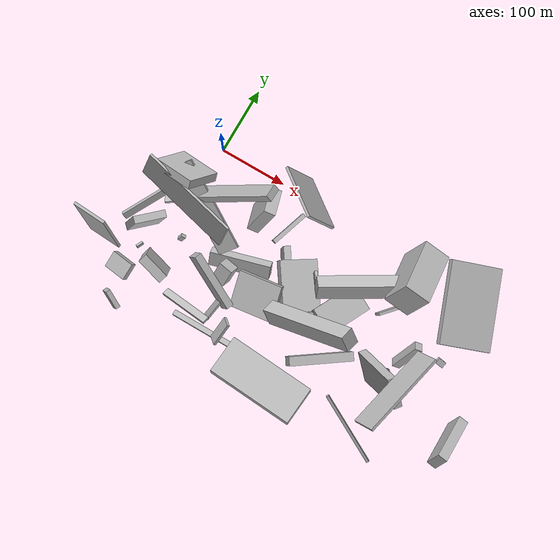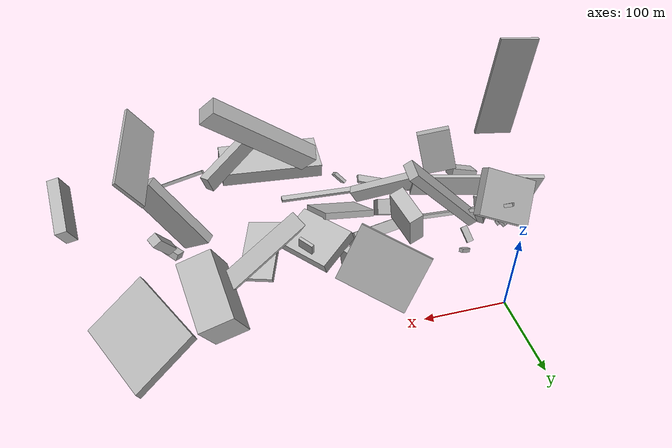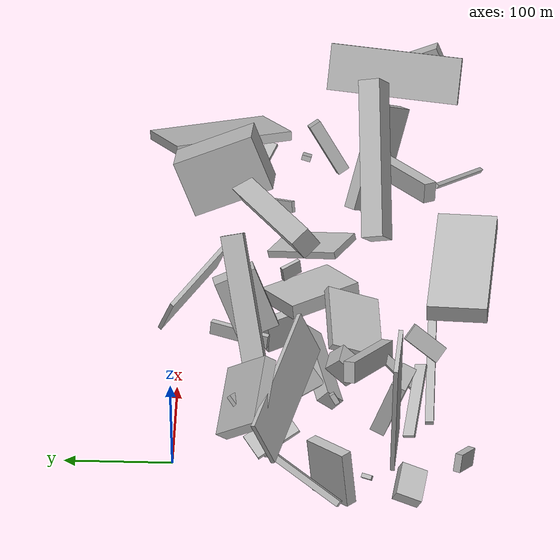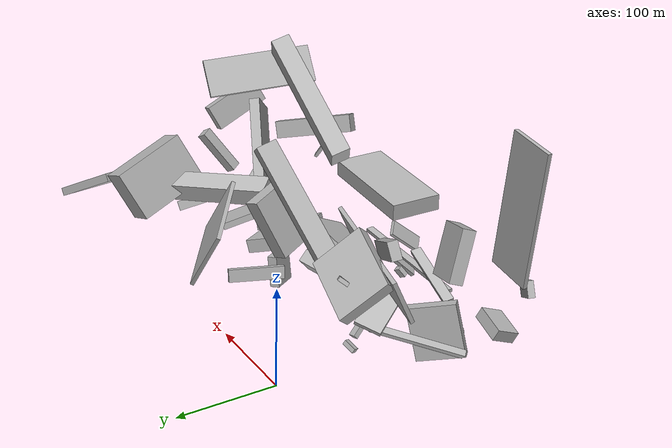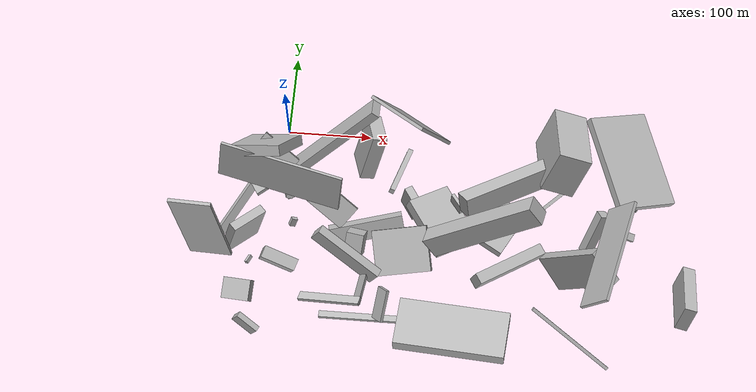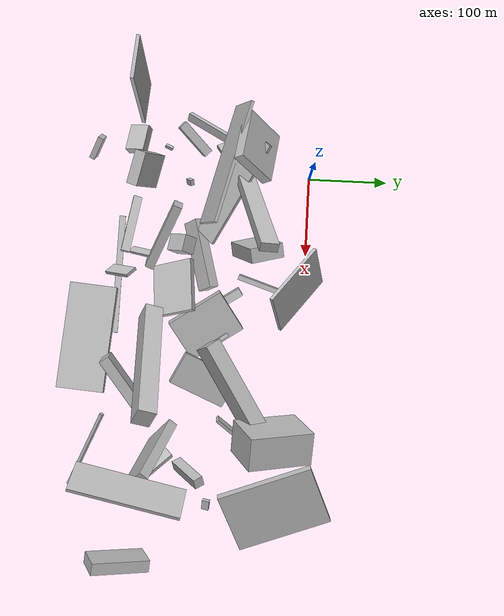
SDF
<sdf version="1.6">
 <world name="default">
  <model name="building_1">
   <static>0</static>
   <pose>437.6190915359875 -82.43035035319647 31.292061089138105 1.3118508661226833 1.0720738205177898 -3.0022340974256503</pose>
   <link name="link">
    <gravity>0</gravity>
    <pose>0 0 59.5 0 0 0</pose>
    <collision name="collision"><geometry><box><size>9 82 119</size></box></geometry></collision>
    <visual name="visual">
     <cast_shadows>0</cast_shadows>
     <geometry><box><size>9 82 119</size></box></geometry>
     <material>
      <script>
       <uri>model://HANNAS_wall/materials/scripts</uri>
       <uri>model://HANNAS_wall/materials/textures</uri>
       <name>vrc/HANNAS_wall</name>
      </script>
     </material>
    </visual>
   </link>
  </model>
  <model name="building_6">
   <static>0</static>
   <pose>5.35428498764694 -103.07190526928966 95.51340084668813 1.1489944750411571 -0.00948626060932305 -0.24898072430641696</pose>
   <link name="link">
    <gravity>0</gravity>
    <pose>0 0 2.0 0 0 0</pose>
    <collision name="collision"><geometry><box><size>150 46 4</size></box></geometry></collision>
    <visual name="visual">
     <cast_shadows>0</cast_shadows>
     <geometry><box><size>150 46 4</size></box></geometry>
     <material>
      <script>
       <uri>model://HANNAS_wall/materials/scripts</uri>
       <uri>model://HANNAS_wall/materials/textures</uri>
       <name>vrc/HANNAS_wall</name>
      </script>
     </material>
    </visual>
   </link>
  </model>
  <model name="building_8">
   <static>0</static>
   <pose>8.236391481148372 -192.9893109086677 52.11381987486844 0.26495647529017036 -0.29074147283644813 1.235395353005434</pose>
   <link name="link">
    <gravity>0</gravity>
    <pose>0 0 27.0 0 0 0</pose>
    <collision name="collision"><geometry><box><size>14 41 54</size></box></geometry></collision>
    <visual name="visual">
     <cast_shadows>0</cast_shadows>
     <geometry><box><size>14 41 54</size></box></geometry>
     <material>
      <script>
       <uri>model://HANNAS_wall/materials/scripts</uri>
       <uri>model://HANNAS_wall/materials/textures</uri>
       <name>vrc/HANNAS_wall</name>
      </script>
     </material>
    </visual>
   </link>
  </model>
  <model name="building_9">
   <static>0</static>
   <pose>100.23151855990163 -75.68300537512336 77.08729633280454 0.33936081322596373 0.3028605259533935 1.8573553293624574</pose>
   <link name="link">
    <gravity>0</gravity>
    <pose>0 0 31.5 0 0 0</pose>
    <collision name="collision"><geometry><box><size>40 17 63</size></box></geometry></collision>
    <visual name="visual">
     <cast_shadows>0</cast_shadows>
     <geometry><box><size>40 17 63</size></box></geometry>
     <material>
      <script>
       <uri>model://HANNAS_wall/materials/scripts</uri>
       <uri>model://HANNAS_wall/materials/textures</uri>
       <name>vrc/HANNAS_wall</name>
      </script>
     </material>
    </visual>
   </link>
  </model>
  <model name="building_10">
   <static>0</static>
   <pose>315.3999818722009 -34.23655719088282 73.86473228075866 2.349406722204507 -1.03022372763481 0.8335247308208918</pose>
   <link name="link">
    <gravity>0</gravity>
    <pose>0 0 20.5 0 0 0</pose>
    <collision name="collision"><geometry><box><size>57 81 41</size></box></geometry></collision>
    <visual name="visual">
     <cast_shadows>0</cast_shadows>
     <geometry><box><size>57 81 41</size></box></geometry>
     <material>
      <script>
       <uri>model://HANNAS_wall/materials/scripts</uri>
       <uri>model://HANNAS_wall/materials/textures</uri>
       <name>vrc/HANNAS_wall</name>
      </script>
     </material>
    </visual>
   </link>
  </model>
  <model name="building_11">
   <static>0</static>
   <pose>86.30546603905523 -127.60988022605544 39.37617794907643 1.0849870947818225 0.5447067295255789 -2.3615617535363285</pose>
   <link name="link">
    <gravity>0</gravity>
    <pose>0 0 70.5 0 0 0</pose>
    <collision name="collision"><geometry><box><size>32 4 141</size></box></geometry></collision>
    <visual name="visual">
     <cast_shadows>0</cast_shadows>
     <geometry><box><size>32 4 141</size></box></geometry>
     <material>
      <script>
       <uri>model://HANNAS_wall/materials/scripts</uri>
       <uri>model://HANNAS_wall/materials/textures</uri>
       <name>vrc/HANNAS_wall</name>
      </script>
     </material>
    </visual>
   </link>
  </model>
  <model name="building_17">
   <static>0</static>
   <pose>374.4214241260228 -172.16310725496191 17.586208114122 2.645069270264059 1.16014532316509 0.2777837157047316</pose>
   <link name="link">
    <gravity>0</gravity>
    <pose>0 0 6.5 0 0 0</pose>
    <collision name="collision"><geometry><box><size>9 42 13</size></box></geometry></collision>
    <visual name="visual">
     <cast_shadows>0</cast_shadows>
     <geometry><box><size>9 42 13</size></box></geometry>
     <material>
      <script>
       <uri>model://HANNAS_wall/materials/scripts</uri>
       <uri>model://HANNAS_wall/materials/textures</uri>
       <name>vrc/HANNAS_wall</name>
      </script>
     </material>
    </visual>
   </link>
  </model>
  <model name="building_18">
   <static>0</static>
   <pose>-4.309867410649486 -51.696882539594796 83.32571821749934 0.5253427518283332 0.6785387106305052 -1.3636956746165068</pose>
   <link name="link">
    <gravity>0</gravity>
    <pose>0 0 27.5 0 0 0</pose>
    <collision name="collision"><geometry><box><size>13 66 55</size></box></geometry></collision>
    <visual name="visual">
     <cast_shadows>0</cast_shadows>
     <geometry><box><size>13 66 55</size></box></geometry>
     <material>
      <script>
       <uri>model://HANNAS_wall/materials/scripts</uri>
       <uri>model://HANNAS_wall/materials/textures</uri>
       <name>vrc/HANNAS_wall</name>
      </script>
     </material>
    </visual>
   </link>
  </model>
  <model name="building_19">
   <static>0</static>
   <pose>281.65869959773255 -130.92780188530182 30.909655787425965 1.3764822428052967 -0.3504880116049783 -1.983069755106946</pose>
   <link name="link">
    <gravity>0</gravity>
    <pose>0 0 21.0 0 0 0</pose>
    <collision name="collision"><geometry><box><size>75 7 42</size></box></geometry></collision>
    <visual name="visual">
     <cast_shadows>0</cast_shadows>
     <geometry><box><size>75 7 42</size></box></geometry>
     <material>
      <script>
       <uri>model://HANNAS_wall/materials/scripts</uri>
       <uri>model://HANNAS_wall/materials/textures</uri>
       <name>vrc/HANNAS_wall</name>
      </script>
     </material>
    </visual>
   </link>
  </model>
  <model name="building_21">
   <static>0</static>
   <pose>106.10636290744945 -127.60953054299867 19.39357840926462 0.8232697023896908 -0.058896088131400993 0.2606551331963577</pose>
   <link name="link">
    <gravity>0</gravity>
    <pose>0 0 7.0 0 0 0</pose>
    <collision name="collision"><geometry><box><size>88 22 14</size></box></geometry></collision>
    <visual name="visual">
     <cast_shadows>0</cast_shadows>
     <geometry><box><size>88 22 14</size></box></geometry>
     <material>
      <script>
       <uri>model://HANNAS_wall/materials/scripts</uri>
       <uri>model://HANNAS_wall/materials/textures</uri>
       <name>vrc/HANNAS_wall</name>
      </script>
     </material>
    </visual>
   </link>
  </model>
  <model name="building_23">
   <static>0</static>
   <pose>217.21068066256566 -106.8936457999751 28.211134534866737 0.26020893949456286 -1.2441519493708681 0.3470414868789682</pose>
   <link name="link">
    <gravity>0</gravity>
    <pose>0 0 27.5 0 0 0</pose>
    <collision name="collision"><geometry><box><size>14 74 55</size></box></geometry></collision>
    <visual name="visual">
     <cast_shadows>0</cast_shadows>
     <geometry><box><size>14 74 55</size></box></geometry>
     <material>
      <script>
       <uri>model://HANNAS_wall/materials/scripts</uri>
       <uri>model://HANNAS_wall/materials/textures</uri>
       <name>vrc/HANNAS_wall</name>
      </script>
     </material>
    </visual>
   </link>
  </model>
  <model name="building_25">
   <static>0</static>
   <pose>144.6559463860777 -57.7673874871409 30.32514995439268 1.3488819990077496 0.023644021004574262 -1.8874123975515504</pose>
   <link name="link">
    <gravity>0</gravity>
    <pose>0 0 3.0 0 0 0</pose>
    <collision name="collision"><geometry><box><size>57 13 6</size></box></geometry></collision>
    <visual name="visual">
     <cast_shadows>0</cast_shadows>
     <geometry><box><size>57 13 6</size></box></geometry>
     <material>
      <script>
       <uri>model://HANNAS_wall/materials/scripts</uri>
       <uri>model://HANNAS_wall/materials/textures</uri>
       <name>vrc/HANNAS_wall</name>
      </script>
     </material>
    </visual>
   </link>
  </model>
  <model name="building_26">
   <static>0</static>
   <pose>18.955737822809514 -80.73620722591406 70.52551536359911 0.6980378700988477 0.24894655912686392 1.572158214057581</pose>
   <link name="link">
    <gravity>0</gravity>
    <pose>0 0 75.0 0 0 0</pose>
    <collision name="collision"><geometry><box><size>21 11 150</size></box></geometry></collision>
    <visual name="visual">
     <cast_shadows>0</cast_shadows>
     <geometry><box><size>21 11 150</size></box></geometry>
     <material>
      <script>
       <uri>model://HANNAS_wall/materials/scripts</uri>
       <uri>model://HANNAS_wall/materials/textures</uri>
       <name>vrc/HANNAS_wall</name>
      </script>
     </material>
    </visual>
   </link>
  </model>
  <model name="building_28">
   <static>0</static>
   <pose>363.68417162886124 -177.5659108691329 62.031368428985616 1.2778850788803788 -0.9103145721363576 -0.41208554279709697</pose>
   <link name="link">
    <gravity>0</gravity>
    <pose>0 0 6.0 0 0 0</pose>
    <collision name="collision"><geometry><box><size>105 46 12</size></box></geometry></collision>
    <visual name="visual">
     <cast_shadows>0</cast_shadows>
     <geometry><box><size>105 46 12</size></box></geometry>
     <material>
      <script>
       <uri>model://HANNAS_wall/materials/scripts</uri>
       <uri>model://HANNAS_wall/materials/textures</uri>
       <name>vrc/HANNAS_wall</name>
      </script>
     </material>
    </visual>
   </link>
  </model>
  <model name="building_30">
   <static>0</static>
   <pose>154.1438944602471 -260.76517615121014 50.82021861116795 -1.559107044717571 -0.037200076262798636 -1.6493112635955396</pose>
   <link name="link">
    <gravity>0</gravity>
    <pose>0 0 64.5 0 0 0</pose>
    <collision name="collision"><geometry><box><size>57 18 129</size></box></geometry></collision>
    <visual name="visual">
     <cast_shadows>0</cast_shadows>
     <geometry><box><size>57 18 129</size></box></geometry>
     <material>
      <script>
       <uri>model://HANNAS_wall/materials/scripts</uri>
       <uri>model://HANNAS_wall/materials/textures</uri>
       <name>vrc/HANNAS_wall</name>
      </script>
     </material>
    </visual>
   </link>
  </model>
  <model name="building_31">
   <static>0</static>
   <pose>-31.926065242968324 -74.1707919584201 54.69504558249599 -0.5811075584053086 -1.1395610420115079 2.706654313135109</pose>
   <link name="link">
    <gravity>0</gravity>
    <pose>0 0 22.5 0 0 0</pose>
    <collision name="collision"><geometry><box><size>4 26 45</size></box></geometry></collision>
    <visual name="visual">
     <cast_shadows>0</cast_shadows>
     <geometry><box><size>4 26 45</size></box></geometry>
     <material>
      <script>
       <uri>model://HANNAS_wall/materials/scripts</uri>
       <uri>model://HANNAS_wall/materials/textures</uri>
       <name>vrc/HANNAS_wall</name>
      </script>
     </material>
    </visual>
   </link>
  </model>
  <model name="building_32">
   <static>0</static>
   <pose>328.0532352979964 -82.83299087507682 35.68371505729147 2.722888204923089 0.3066338025269533 -0.7902340849112338</pose>
   <link name="link">
    <gravity>0</gravity>
    <pose>0 0 5.5 0 0 0</pose>
    <collision name="collision"><geometry><box><size>4 52 11</size></box></geometry></collision>
    <visual name="visual">
     <cast_shadows>0</cast_shadows>
     <geometry><box><size>4 52 11</size></box></geometry>
     <material>
      <script>
       <uri>model://HANNAS_wall/materials/scripts</uri>
       <uri>model://HANNAS_wall/materials/textures</uri>
       <name>vrc/HANNAS_wall</name>
      </script>
     </material>
    </visual>
   </link>
  </model>
  <model name="building_36">
   <static>0</static>
   <pose>72.01799213276487 -217.76552183754765 16.959756811277096 1.324694017301546 -0.28466171215661706 -0.1382357111599616</pose>
   <link name="link">
    <gravity>0</gravity>
    <pose>0 0 5.5 0 0 0</pose>
    <collision name="collision"><geometry><box><size>77 4 11</size></box></geometry></collision>
    <visual name="visual">
     <cast_shadows>0</cast_shadows>
     <geometry><box><size>77 4 11</size></box></geometry>
     <material>
      <script>
       <uri>model://HANNAS_wall/materials/scripts</uri>
       <uri>model://HANNAS_wall/materials/textures</uri>
       <name>vrc/HANNAS_wall</name>
      </script>
     </material>
    </visual>
   </link>
  </model>
  <model name="building_39">
   <static>0</static>
   <pose>479.1019872850974 -219.2153587391183 56.54641110493405 0.4409493261709401 -0.27256057688916696 3.0367680150685206</pose>
   <link name="link">
    <gravity>0</gravity>
    <pose>0 0 16.0 0 0 0</pose>
    <collision name="collision"><geometry><box><size>15 71 32</size></box></geometry></collision>
    <visual name="visual">
     <cast_shadows>0</cast_shadows>
     <geometry><box><size>15 71 32</size></box></geometry>
     <material>
      <script>
       <uri>model://HANNAS_wall/materials/scripts</uri>
       <uri>model://HANNAS_wall/materials/textures</uri>
       <name>vrc/HANNAS_wall</name>
      </script>
     </material>
    </visual>
   </link>
  </model>
  <model name="building_41">
   <static>0</static>
   <pose>418.59463833873053 -116.6745419373348 8.886875390212314 -1.1874172125514066 -1.02610044229483 -0.5089793728584557</pose>
   <link name="link">
    <gravity>0</gravity>
    <pose>0 0 4.5 0 0 0</pose>
    <collision name="collision"><geometry><box><size>5 13 9</size></box></geometry></collision>
    <visual name="visual">
     <cast_shadows>0</cast_shadows>
     <geometry><box><size>5 13 9</size></box></geometry>
     <material>
      <script>
       <uri>model://HANNAS_wall/materials/scripts</uri>
       <uri>model://HANNAS_wall/materials/textures</uri>
       <name>vrc/HANNAS_wall</name>
      </script>
     </material>
    </visual>
   </link>
  </model>
  <model name="building_44">
   <static>0</static>
   <pose>162.10043923853192 -90.05231533740421 20.080020981178293 1.430895619960073 0.06570678389072349 -0.9873447351254472</pose>
   <link name="link">
    <gravity>0</gravity>
    <pose>0 0 5.0 0 0 0</pose>
    <collision name="collision"><geometry><box><size>28 33 10</size></box></geometry></collision>
    <visual name="visual">
     <cast_shadows>0</cast_shadows>
     <geometry><box><size>28 33 10</size></box></geometry>
     <material>
      <script>
       <uri>model://HANNAS_wall/materials/scripts</uri>
       <uri>model://HANNAS_wall/materials/textures</uri>
       <name>vrc/HANNAS_wall</name>
      </script>
     </material>
    </visual>
   </link>
  </model>
  <model name="building_47">
   <static>0</static>
   <pose>-48.45107358489432 -117.85576637247749 34.38110994675468 -0.41472728775682827 -0.755967283650811 2.879221095721534</pose>
   <link name="link">
    <gravity>0</gravity>
    <pose>0 0 3.0 0 0 0</pose>
    <collision name="collision"><geometry><box><size>10 89 6</size></box></geometry></collision>
    <visual name="visual">
     <cast_shadows>0</cast_shadows>
     <geometry><box><size>10 89 6</size></box></geometry>
     <material>
      <script>
       <uri>model://HANNAS_wall/materials/scripts</uri>
       <uri>model://HANNAS_wall/materials/textures</uri>
       <name>vrc/HANNAS_wall</name>
      </script>
     </material>
    </visual>
   </link>
  </model>
  <model name="building_50">
   <static>0</static>
   <pose>52.729701849638474 -161.52714307842297 70.91897239107904 -2.040312367136333 -0.20691952324069982 -1.9209458319636</pose>
   <link name="link">
    <gravity>0</gravity>
    <pose>0 0 44.0 0 0 0</pose>
    <collision name="collision"><geometry><box><size>11 20 88</size></box></geometry></collision>
    <visual name="visual">
     <cast_shadows>0</cast_shadows>
     <geometry><box><size>11 20 88</size></box></geometry>
     <material>
      <script>
       <uri>model://HANNAS_wall/materials/scripts</uri>
       <uri>model://HANNAS_wall/materials/textures</uri>
       <name>vrc/HANNAS_wall</name>
      </script>
     </material>
    </visual>
   </link>
  </model>
  <model name="building_51">
   <static>0</static>
   <pose>221.09703755117573 -117.09014637580128 75.49043656393289 -1.7503867784015374 -0.5003154449333582 -0.9243745060069004</pose>
   <link name="link">
    <gravity>0</gravity>
    <pose>0 0 75.0 0 0 0</pose>
    <collision name="collision"><geometry><box><size>21 25 150</size></box></geometry></collision>
    <visual name="visual">
     <cast_shadows>0</cast_shadows>
     <geometry><box><size>21 25 150</size></box></geometry>
     <material>
      <script>
       <uri>model://HANNAS_wall/materials/scripts</uri>
       <uri>model://HANNAS_wall/materials/textures</uri>
       <name>vrc/HANNAS_wall</name>
      </script>
     </material>
    </visual>
   </link>
  </model>
  <model name="building_52">
   <static>0</static>
   <pose>20.352656919333626 -149.06319098955157 67.41428515678932 -2.4444649614006644 0.8829101622045245 -2.1455972744927285</pose>
   <link name="link">
    <gravity>0</gravity>
    <pose>0 0 3.5 0 0 0</pose>
    <collision name="collision"><geometry><box><size>10 5 7</size></box></geometry></collision>
    <visual name="visual">
     <cast_shadows>0</cast_shadows>
     <geometry><box><size>10 5 7</size></box></geometry>
     <material>
      <script>
       <uri>model://HANNAS_wall/materials/scripts</uri>
       <uri>model://HANNAS_wall/materials/textures</uri>
       <name>vrc/HANNAS_wall</name>
      </script>
     </material>
    </visual>
   </link>
  </model>
  <model name="building_54">
   <static>0</static>
   <pose>281.4517581870591 -211.5845240141133 111.75271999297672 1.3421116696872826 -0.25248985222446735 -2.495292572714111</pose>
   <link name="link">
    <gravity>0</gravity>
    <pose>0 0 6.5 0 0 0</pose>
    <collision name="collision"><geometry><box><size>91 19 13</size></box></geometry></collision>
    <visual name="visual">
     <cast_shadows>0</cast_shadows>
     <geometry><box><size>91 19 13</size></box></geometry>
     <material>
      <script>
       <uri>model://HANNAS_wall/materials/scripts</uri>
       <uri>model://HANNAS_wall/materials/textures</uri>
       <name>vrc/HANNAS_wall</name>
      </script>
     </material>
    </visual>
   </link>
  </model>
  <model name="building_55">
   <static>0</static>
   <pose>188.49354018894212 -183.96123008662056 113.74345117638995 0.461808262289813 -0.8144802432496324 2.5957566522299795</pose>
   <link name="link">
    <gravity>0</gravity>
    <pose>0 0 75.0 0 0 0</pose>
    <collision name="collision"><geometry><box><size>26 21 150</size></box></geometry></collision>
    <visual name="visual">
     <cast_shadows>0</cast_shadows>
     <geometry><box><size>26 21 150</size></box></geometry>
     <material>
      <script>
       <uri>model://HANNAS_wall/materials/scripts</uri>
       <uri>model://HANNAS_wall/materials/textures</uri>
       <name>vrc/HANNAS_wall</name>
      </script>
     </material>
    </visual>
   </link>
  </model>
  <model name="building_57">
   <static>0</static>
   <pose>210.88852505477647 -104.09874507341391 49.31959568484991 2.6663869866914207 -1.4320164557929167 1.0943419292541208</pose>
   <link name="link">
    <gravity>0</gravity>
    <pose>0 0 2.0 0 0 0</pose>
    <collision name="collision"><geometry><box><size>14 20 4</size></box></geometry></collision>
    <visual name="visual">
     <cast_shadows>0</cast_shadows>
     <geometry><box><size>14 20 4</size></box></geometry>
     <material>
      <script>
       <uri>model://HANNAS_wall/materials/scripts</uri>
       <uri>model://HANNAS_wall/materials/textures</uri>
       <name>vrc/HANNAS_wall</name>
      </script>
     </material>
    </visual>
   </link>
  </model>
  <model name="building_59">
   <static>0</static>
   <pose>-64.29989889318425 -204.47903842762827 90.03859590019371 -0.09024001020950574 -0.01354528036475804 1.4918090031410527</pose>
   <link name="link">
    <gravity>0</gravity>
    <pose>0 0 67.5 0 0 0</pose>
    <collision name="collision"><geometry><box><size>4 49 135</size></box></geometry></collision>
    <visual name="visual">
     <cast_shadows>0</cast_shadows>
     <geometry><box><size>4 49 135</size></box></geometry>
     <material>
      <script>
       <uri>model://HANNAS_wall/materials/scripts</uri>
       <uri>model://HANNAS_wall/materials/textures</uri>
       <name>vrc/HANNAS_wall</name>
      </script>
     </material>
    </visual>
   </link>
  </model>
  <model name="building_61">
   <static>0</static>
   <pose>420.6090283559767 -67.15379096593793 14.236908687953951 1.6032064087006468 1.1632326411350187 -0.44050868314328867</pose>
   <link name="link">
    <gravity>0</gravity>
    <pose>0 0 6.0 0 0 0</pose>
    <collision name="collision"><geometry><box><size>4 26 12</size></box></geometry></collision>
    <visual name="visual">
     <cast_shadows>0</cast_shadows>
     <geometry><box><size>4 26 12</size></box></geometry>
     <material>
      <script>
       <uri>model://HANNAS_wall/materials/scripts</uri>
       <uri>model://HANNAS_wall/materials/textures</uri>
       <name>vrc/HANNAS_wall</name>
      </script>
     </material>
    </visual>
   </link>
  </model>
  <model name="building_62">
   <static>0</static>
   <pose>183.1731586396432 -38.756880539008364 94.57688437134988 1.8624890501278661 0.43745671767400957 -2.1053075471071354</pose>
   <link name="link">
    <gravity>0</gravity>
    <pose>0 0 42.0 0 0 0</pose>
    <collision name="collision"><geometry><box><size>4 70 84</size></box></geometry></collision>
    <visual name="visual">
     <cast_shadows>0</cast_shadows>
     <geometry><box><size>4 70 84</size></box></geometry>
     <material>
      <script>
       <uri>model://HANNAS_wall/materials/scripts</uri>
       <uri>model://HANNAS_wall/materials/textures</uri>
       <name>vrc/HANNAS_wall</name>
      </script>
     </material>
    </visual>
   </link>
  </model>
  <model name="building_63">
   <static>0</static>
   <pose>14.28143764774795 -89.71261016954391 6.284494123668977 -1.202419454358407 -0.3855683171224423 0.26817049000584764</pose>
   <link name="link">
    <gravity>0</gravity>
    <pose>0 0 3.0 0 0 0</pose>
    <collision name="collision"><geometry><box><size>13 5 6</size></box></geometry></collision>
    <visual name="visual">
     <cast_shadows>0</cast_shadows>
     <geometry><box><size>13 5 6</size></box></geometry>
     <material>
      <script>
       <uri>model://HANNAS_wall/materials/scripts</uri>
       <uri>model://HANNAS_wall/materials/textures</uri>
       <name>vrc/HANNAS_wall</name>
      </script>
     </material>
    </visual>
   </link>
  </model>
  <model name="building_64">
   <static>0</static>
   <pose>-34.02168534348542 -151.43328618271013 33.03433817968379 1.468129256776227 -0.2583388049204891 -2.342464646701462</pose>
   <link name="link">
    <gravity>0</gravity>
    <pose>0 0 5.5 0 0 0</pose>
    <collision name="collision"><geometry><box><size>47 53 11</size></box></geometry></collision>
    <visual name="visual">
     <cast_shadows>0</cast_shadows>
     <geometry><box><size>47 53 11</size></box></geometry>
     <material>
      <script>
       <uri>model://HANNAS_wall/materials/scripts</uri>
       <uri>model://HANNAS_wall/materials/textures</uri>
       <name>vrc/HANNAS_wall</name>
      </script>
     </material>
    </visual>
   </link>
  </model>
  <model name="building_68">
   <static>0</static>
   <pose>-27.491733175599748 -175.5566707710327 18.164092858503267 1.4752117476341509 -0.5919405117113489 -0.3753534973640131</pose>
   <link name="link">
    <gravity>0</gravity>
    <pose>0 0 5.0 0 0 0</pose>
    <collision name="collision"><geometry><box><size>4 4 10</size></box></geometry></collision>
    <visual name="visual">
     <cast_shadows>0</cast_shadows>
     <geometry><box><size>4 4 10</size></box></geometry>
     <material>
      <script>
       <uri>model://HANNAS_wall/materials/scripts</uri>
       <uri>model://HANNAS_wall/materials/textures</uri>
       <name>vrc/HANNAS_wall</name>
      </script>
     </material>
    </visual>
   </link>
  </model>
  <model name="building_71">
   <static>0</static>
   <pose>381.05260071798534 -132.932415351296 58.98813643361316 -0.6411906496482839 -0.918285789482809 1.0301206668294394</pose>
   <link name="link">
    <gravity>0</gravity>
    <pose>0 0 6.0 0 0 0</pose>
    <collision name="collision"><geometry><box><size>56 12 12</size></box></geometry></collision>
    <visual name="visual">
     <cast_shadows>0</cast_shadows>
     <geometry><box><size>56 12 12</size></box></geometry>
     <material>
      <script>
       <uri>model://HANNAS_wall/materials/scripts</uri>
       <uri>model://HANNAS_wall/materials/textures</uri>
       <name>vrc/HANNAS_wall</name>
      </script>
     </material>
    </visual>
   </link>
  </model>
  <model name="building_74">
   <static>0</static>
   <pose>-17.734936778043288 -269.2062702030643 43.45272926011301 2.6638555290621517 -0.09455047720809316 -2.003159004180929</pose>
   <link name="link">
    <gravity>0</gravity>
    <pose>0 0 8.5 0 0 0</pose>
    <collision name="collision"><geometry><box><size>7 29 17</size></box></geometry></collision>
    <visual name="visual">
     <cast_shadows>0</cast_shadows>
     <geometry><box><size>7 29 17</size></box></geometry>
     <material>
      <script>
       <uri>model://HANNAS_wall/materials/scripts</uri>
       <uri>model://HANNAS_wall/materials/textures</uri>
       <name>vrc/HANNAS_wall</name>
      </script>
     </material>
    </visual>
   </link>
  </model>
  <model name="building_76">
   <static>0</static>
   <pose>10.546233998341595 -92.35525242757475 29.01890200330654 -2.431579629958561 -0.2800173996890458 -3.092617884284566</pose>
   <link name="link">
    <gravity>0</gravity>
    <pose>0 0 2.5 0 0 0</pose>
    <collision name="collision"><geometry><box><size>8 20 5</size></box></geometry></collision>
    <visual name="visual">
     <cast_shadows>0</cast_shadows>
     <geometry><box><size>8 20 5</size></box></geometry>
     <material>
      <script>
       <uri>model://HANNAS_wall/materials/scripts</uri>
       <uri>model://HANNAS_wall/materials/textures</uri>
       <name>vrc/HANNAS_wall</name>
      </script>
     </material>
    </visual>
   </link>
  </model>
  <model name="building_77">
   <static>0</static>
   <pose>94.78130592319368 -166.74164017939393 27.26124052345574 0.7953518090895283 0.030078107799649947 2.961889554618221</pose>
   <link name="link">
    <gravity>0</gravity>
    <pose>0 0 14.0 0 0 0</pose>
    <collision name="collision"><geometry><box><size>21 19 28</size></box></geometry></collision>
    <visual name="visual">
     <cast_shadows>0</cast_shadows>
     <geometry><box><size>21 19 28</size></box></geometry>
     <material>
      <script>
       <uri>model://HANNAS_wall/materials/scripts</uri>
       <uri>model://HANNAS_wall/materials/textures</uri>
       <name>vrc/HANNAS_wall</name>
      </script>
     </material>
    </visual>
   </link>
  </model>
  <model name="building_79">
   <static>0</static>
   <pose>-39.040294461058764 -230.88870664649096 13.647927345094724 1.1848422411239707 0.20183210570043666 2.9858669007668173</pose>
   <link name="link">
    <gravity>0</gravity>
    <pose>0 0 12.5 0 0 0</pose>
    <collision name="collision"><geometry><box><size>34 12 25</size></box></geometry></collision>
    <visual name="visual">
     <cast_shadows>0</cast_shadows>
     <geometry><box><size>34 12 25</size></box></geometry>
     <material>
      <script>
       <uri>model://HANNAS_wall/materials/scripts</uri>
       <uri>model://HANNAS_wall/materials/textures</uri>
       <name>vrc/HANNAS_wall</name>
      </script>
     </material>
    </visual>
   </link>
  </model>
  <model name="building_80">
   <static>0</static>
   <pose>156.71326074777704 -187.43886468330757 25.740983535819176 0.43878544346921006 -1.0457309023897399 -1.8662835852646664</pose>
   <link name="link">
    <gravity>0</gravity>
    <pose>0 0 27.0 0 0 0</pose>
    <collision name="collision"><geometry><box><size>8 66 54</size></box></geometry></collision>
    <visual name="visual">
     <cast_shadows>0</cast_shadows>
     <geometry><box><size>8 66 54</size></box></geometry>
     <material>
      <script>
       <uri>model://HANNAS_wall/materials/scripts</uri>
       <uri>model://HANNAS_wall/materials/textures</uri>
       <name>vrc/HANNAS_wall</name>
      </script>
     </material>
    </visual>
   </link>
  </model>
  <model name="building_84">
   <static>0</static>
   <pose>129.72260013384374 -246.55506591819778 20.947140931938293 0.7008216671058727 -0.6006939521484469 -2.7412260980128864</pose>
   <link name="link">
    <gravity>0</gravity>
    <pose>0 0 19.5 0 0 0</pose>
    <collision name="collision"><geometry><box><size>4 17 39</size></box></geometry></collision>
    <visual name="visual">
     <cast_shadows>0</cast_shadows>
     <geometry><box><size>4 17 39</size></box></geometry>
     <material>
      <script>
       <uri>model://HANNAS_wall/materials/scripts</uri>
       <uri>model://HANNAS_wall/materials/textures</uri>
       <name>vrc/HANNAS_wall</name>
      </script>
     </material>
    </visual>
   </link>
  </model>
  <model name="building_85">
   <static>0</static>
   <pose>376.61996135480155 -195.34788069224174 127.14223099504505 -0.06762216281771287 0.6538809560200737 -0.2520256483708657</pose>
   <link name="link">
    <gravity>0</gravity>
    <pose>0 0 22.5 0 0 0</pose>
    <collision name="collision"><geometry><box><size>4 129 45</size></box></geometry></collision>
    <visual name="visual">
     <cast_shadows>0</cast_shadows>
     <geometry><box><size>4 129 45</size></box></geometry>
     <material>
      <script>
       <uri>model://HANNAS_wall/materials/scripts</uri>
       <uri>model://HANNAS_wall/materials/textures</uri>
       <name>vrc/HANNAS_wall</name>
      </script>
     </material>
    </visual>
   </link>
  </model>
  <model name="building_87">
   <static>0</static>
   <pose>103.23378490441526 -203.9357656652127 20.730051777256918 1.1328371467779121 0.7016291178862675 0.6588978187394102</pose>
   <link name="link">
    <gravity>0</gravity>
    <pose>0 0 4.5 0 0 0</pose>
    <collision name="collision"><geometry><box><size>4 45 9</size></box></geometry></collision>
    <visual name="visual">
     <cast_shadows>0</cast_shadows>
     <geometry><box><size>4 45 9</size></box></geometry>
     <material>
      <script>
       <uri>model://HANNAS_wall/materials/scripts</uri>
       <uri>model://HANNAS_wall/materials/textures</uri>
       <name>vrc/HANNAS_wall</name>
      </script>
     </material>
    </visual>
   </link>
  </model>
  <model name="building_89">
   <static>0</static>
   <pose>355.89273898943316 -263.2138340606781 45.13888232309248 2.5807392237226527 0.3342241493733556 -2.228222841100439</pose>
   <link name="link">
    <gravity>0</gravity>
    <pose>0 0 2.0 0 0 0</pose>
    <collision name="collision"><geometry><box><size>4 117 4</size></box></geometry></collision>
    <visual name="visual">
     <cast_shadows>0</cast_shadows>
     <geometry><box><size>4 117 4</size></box></geometry>
     <material>
      <script>
       <uri>model://HANNAS_wall/materials/scripts</uri>
       <uri>model://HANNAS_wall/materials/textures</uri>
       <name>vrc/HANNAS_wall</name>
      </script>
     </material>
    </visual>
   </link>
  </model>
  <model name="building_91">
   <static>0</static>
   <pose>208.9179007311778 -238.7709870487247 5.999596843980443 1.6029812220112045 -0.10315279268315856 -1.5874563944486804</pose>
   <link name="link">
    <gravity>0</gravity>
    <pose>0 0 75.0 0 0 0</pose>
    <collision name="collision"><geometry><box><size>8 4 150</size></box></geometry></collision>
    <visual name="visual">
     <cast_shadows>0</cast_shadows>
     <geometry><box><size>8 4 150</size></box></geometry>
     <material>
      <script>
       <uri>model://HANNAS_wall/materials/scripts</uri>
       <uri>model://HANNAS_wall/materials/textures</uri>
       <name>vrc/HANNAS_wall</name>
      </script>
     </material>
    </visual>
   </link>
  </model>
 </world>
</sdf>
